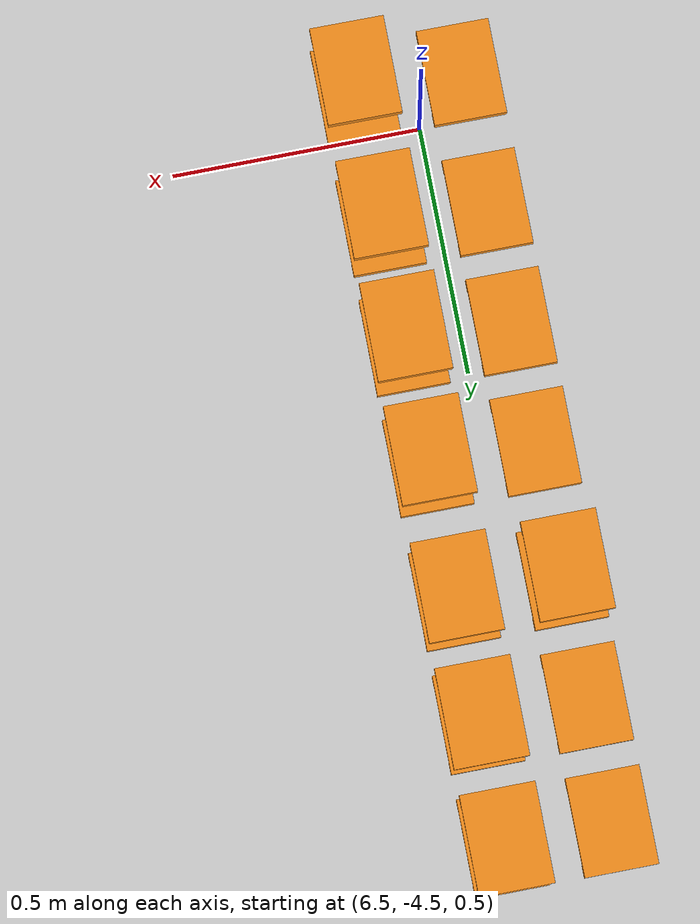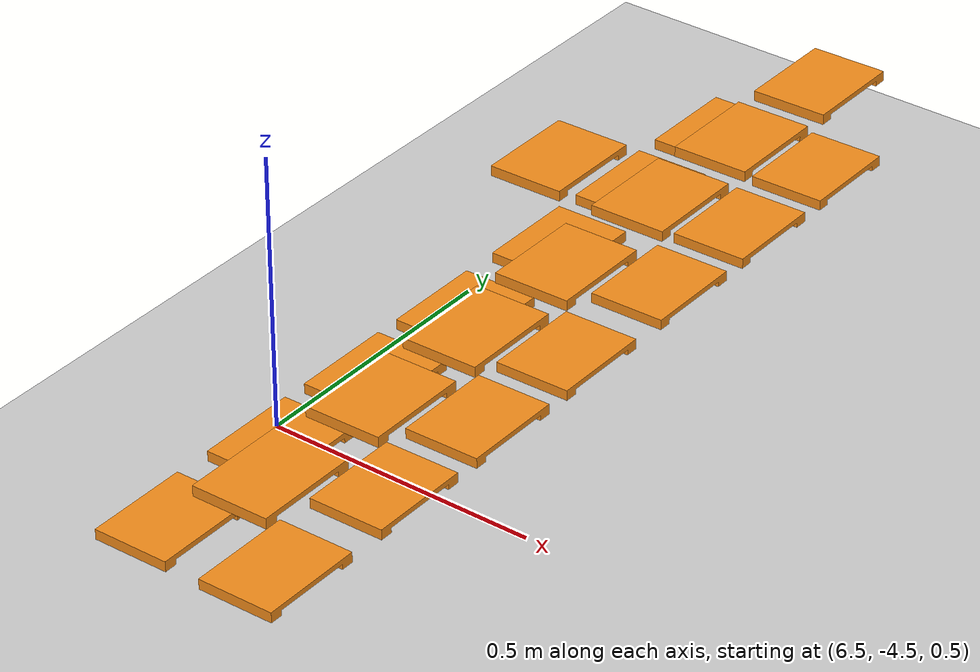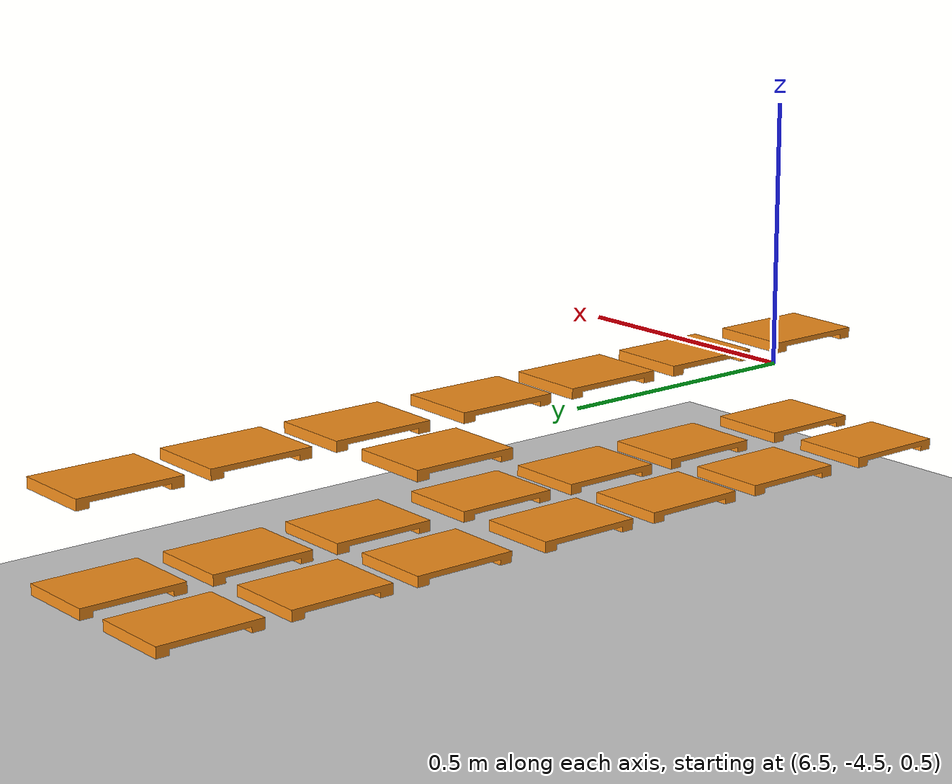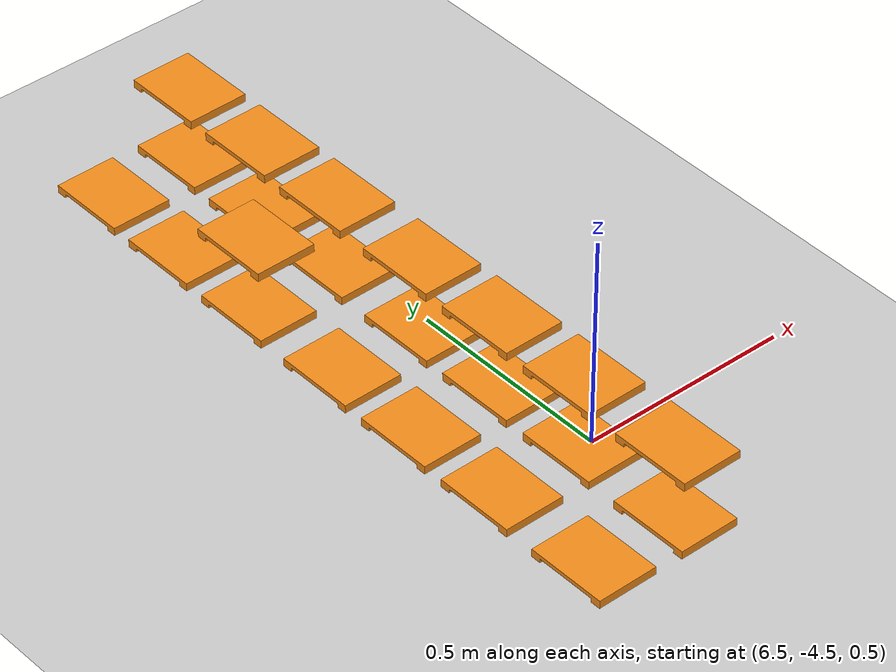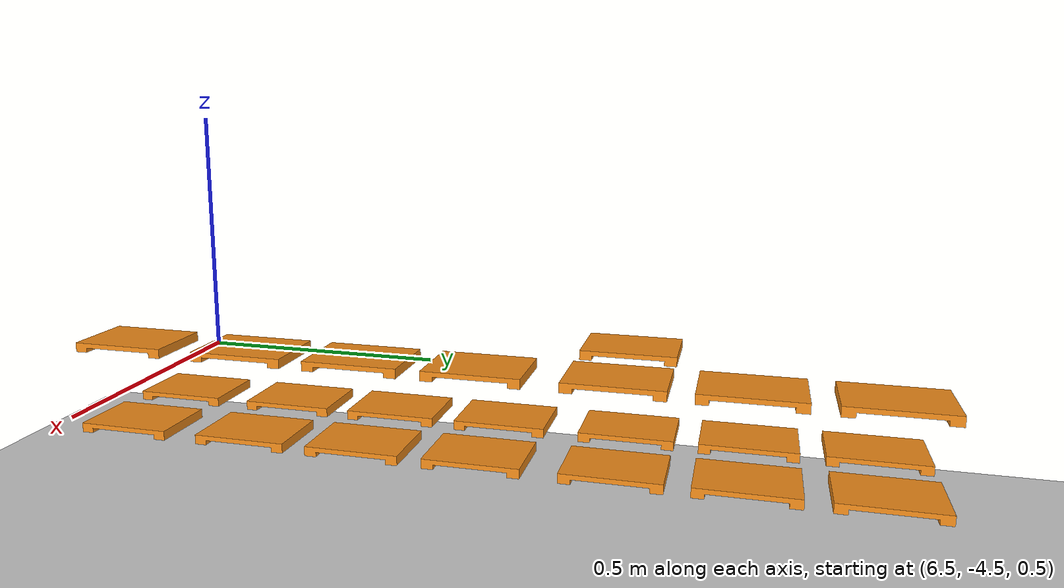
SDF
<sdf version="1.7">
 <world name="default">
  <model name="ground_plane">
   <static>1</static>
   <link name="link">
    <collision name="collision">
     <geometry><plane><normal>0 0 1</normal><size>100 100</size></plane></geometry>
     <surface>
      <contact><collide_bitmask>65535</collide_bitmask></contact>
      <friction><ode><mu>1</mu><mu2>1</mu2></ode></friction>
     </surface>
    </collision>
    <visual name="visual">
     <cast_shadows>0</cast_shadows>
     <geometry><plane><normal>0 0 1</normal><size>100 100</size></plane></geometry>
     <material>
      <script><uri>file://media/materials/scripts/gazebo.material</uri><name>Gazebo/Grey</name></script>
     </material>
    </visual>
   </link>
  </model>
  <model name="pallet_313">
   <pose>6.60557 -3.088 0.330979 3e-06 -0.013272 -3e-06</pose>
   <link name="link">
    <inertial>
     <pose>0 0 0 0 -0 1.571</pose>
     <inertia>
      <ixx>0.00220983</ixx>
      <ixy>0</ixy>
      <ixz>0</ixz>
      <iyy>0.00128087</iyy>
      <iyz>0</iyz>
      <izz>0.00244903</izz>
     </inertia>
     <mass>0.01</mass>
    </inertial>
    <visual name="visual1">
     <cast_shadows>0</cast_shadows>
     <geometry><mesh><uri>model://pallet/meshes/pallet.stl</uri></mesh></geometry>
     <material>
      <script><uri>file://media/materials/scripts/gazebo.material</uri><name>Gazebo/Orange</name></script>
      <shader type="pixel"><normal_map>__default__</normal_map></shader>
      <emissive>0 0 0 1</emissive>
     </material>
     <pose>0 0 -0 0 -0 1.571</pose>
    </visual>
    <collision name="collision_0">
     <pose>0 0 0 0 -0 1.571</pose>
     <geometry><mesh><uri>model://pallet/meshes/pallet.stl</uri></mesh></geometry>
     <surface>
      <friction>
       <ode><mu>1</mu><mu2>1</mu2><fdir1>0 0 0</fdir1><slip1>0</slip1><slip2>0</slip2></ode>
       <torsional>
        <coefficient>1</coefficient>
        <patch_radius>0</patch_radius>
        <surface_radius>0</surface_radius>
        <use_patch_radius>1</use_patch_radius>
        <ode><slip>0</slip></ode>
       </torsional>
      </friction>
      <bounce><restitution_coefficient>0</restitution_coefficient><threshold>1e+06</threshold></bounce>
      <contact>
       <collide_without_contact>0</collide_without_contact>
       <collide_without_contact_bitmask>1</collide_without_contact_bitmask>
       <collide_bitmask>1</collide_bitmask>
       <ode>
        <soft_cfm>0</soft_cfm>
        <soft_erp>0.2</soft_erp>
        <kp>1e+13</kp>
        <kd>1</kd>
        <max_vel>0.01</max_vel>
        <min_depth>0</min_depth>
       </ode>
       <bullet>
        <split_impulse>1</split_impulse>
        <split_impulse_penetration_threshold>-0.01</split_impulse_penetration_threshold>
        <soft_cfm>0</soft_cfm>
        <soft_erp>0.2</soft_erp>
        <kp>1e+13</kp>
        <kd>1</kd>
       </bullet>
      </contact>
     </surface>
    </collision>
   </link>
   <static>0</static>
  </model>
  <model name="pallet_314">
   <pose>6.60558 -3.338 0.330975 4.3e-05 -0.013267 3e-06</pose>
   <link name="link">
    <inertial>
     <pose>0 0 0 0 -0 1.571</pose>
     <inertia>
      <ixx>0.00220983</ixx>
      <ixy>0</ixy>
      <ixz>0</ixz>
      <iyy>0.00128087</iyy>
      <iyz>0</iyz>
      <izz>0.00244903</izz>
     </inertia>
     <mass>0.01</mass>
    </inertial>
    <visual name="visual1">
     <cast_shadows>0</cast_shadows>
     <geometry><mesh><uri>model://pallet/meshes/pallet.stl</uri></mesh></geometry>
     <material>
      <script><uri>file://media/materials/scripts/gazebo.material</uri><name>Gazebo/Orange</name></script>
      <shader type="pixel"><normal_map>__default__</normal_map></shader>
      <emissive>0 0 0 1</emissive>
     </material>
     <pose>0 0 -0 0 -0 1.571</pose>
    </visual>
    <collision name="collision_0">
     <pose>0 0 0 0 -0 1.571</pose>
     <geometry><mesh><uri>model://pallet/meshes/pallet.stl</uri></mesh></geometry>
     <surface>
      <friction>
       <ode><mu>1</mu><mu2>1</mu2><fdir1>0 0 0</fdir1><slip1>0</slip1><slip2>0</slip2></ode>
       <torsional>
        <coefficient>1</coefficient>
        <patch_radius>0</patch_radius>
        <surface_radius>0</surface_radius>
        <use_patch_radius>1</use_patch_radius>
        <ode><slip>0</slip></ode>
       </torsional>
      </friction>
      <bounce><restitution_coefficient>0</restitution_coefficient><threshold>1e+06</threshold></bounce>
      <contact>
       <collide_without_contact>0</collide_without_contact>
       <collide_without_contact_bitmask>1</collide_without_contact_bitmask>
       <collide_bitmask>1</collide_bitmask>
       <ode>
        <soft_cfm>0</soft_cfm>
        <soft_erp>0.2</soft_erp>
        <kp>1e+13</kp>
        <kd>1</kd>
        <max_vel>0.01</max_vel>
        <min_depth>0</min_depth>
       </ode>
       <bullet>
        <split_impulse>1</split_impulse>
        <split_impulse_penetration_threshold>-0.01</split_impulse_penetration_threshold>
        <soft_cfm>0</soft_cfm>
        <soft_erp>0.2</soft_erp>
        <kp>1e+13</kp>
        <kd>1</kd>
       </bullet>
      </contact>
     </surface>
    </collision>
   </link>
   <static>0</static>
  </model>
  <model name="pallet_315">
   <pose>6.60558 -3.588 0.330975 4e-05 -0.013264 1.2e-05</pose>
   <link name="link">
    <inertial>
     <pose>0 0 0 0 -0 1.571</pose>
     <inertia>
      <ixx>0.00220983</ixx>
      <ixy>0</ixy>
      <ixz>0</ixz>
      <iyy>0.00128087</iyy>
      <iyz>0</iyz>
      <izz>0.00244903</izz>
     </inertia>
     <mass>0.01</mass>
    </inertial>
    <visual name="visual1">
     <cast_shadows>0</cast_shadows>
     <geometry><mesh><uri>model://pallet/meshes/pallet.stl</uri></mesh></geometry>
     <material>
      <script><uri>file://media/materials/scripts/gazebo.material</uri><name>Gazebo/Orange</name></script>
      <shader type="pixel"><normal_map>__default__</normal_map></shader>
      <emissive>0 0 0 1</emissive>
     </material>
     <pose>0 0 -0 0 -0 1.571</pose>
    </visual>
    <collision name="collision_0">
     <pose>0 0 0 0 -0 1.571</pose>
     <geometry><mesh><uri>model://pallet/meshes/pallet.stl</uri></mesh></geometry>
     <surface>
      <friction>
       <ode><mu>1</mu><mu2>1</mu2><fdir1>0 0 0</fdir1><slip1>0</slip1><slip2>0</slip2></ode>
       <torsional>
        <coefficient>1</coefficient>
        <patch_radius>0</patch_radius>
        <surface_radius>0</surface_radius>
        <use_patch_radius>1</use_patch_radius>
        <ode><slip>0</slip></ode>
       </torsional>
      </friction>
      <bounce><restitution_coefficient>0</restitution_coefficient><threshold>1e+06</threshold></bounce>
      <contact>
       <collide_without_contact>0</collide_without_contact>
       <collide_without_contact_bitmask>1</collide_without_contact_bitmask>
       <collide_bitmask>1</collide_bitmask>
       <ode>
        <soft_cfm>0</soft_cfm>
        <soft_erp>0.2</soft_erp>
        <kp>1e+13</kp>
        <kd>1</kd>
        <max_vel>0.01</max_vel>
        <min_depth>0</min_depth>
       </ode>
       <bullet>
        <split_impulse>1</split_impulse>
        <split_impulse_penetration_threshold>-0.01</split_impulse_penetration_threshold>
        <soft_cfm>0</soft_cfm>
        <soft_erp>0.2</soft_erp>
        <kp>1e+13</kp>
        <kd>1</kd>
       </bullet>
      </contact>
     </surface>
    </collision>
   </link>
   <static>0</static>
  </model>
  <model name="pallet_316">
   <pose>6.60558 -3.8625 0.330977 1e-06 -0.013274 8e-06</pose>
   <link name="link">
    <inertial>
     <pose>0 0 0 0 -0 1.571</pose>
     <inertia>
      <ixx>0.00220983</ixx>
      <ixy>0</ixy>
      <ixz>0</ixz>
      <iyy>0.00128087</iyy>
      <iyz>0</iyz>
      <izz>0.00244903</izz>
     </inertia>
     <mass>0.01</mass>
    </inertial>
    <visual name="visual1">
     <cast_shadows>0</cast_shadows>
     <geometry><mesh><uri>model://pallet/meshes/pallet.stl</uri></mesh></geometry>
     <material>
      <script><uri>file://media/materials/scripts/gazebo.material</uri><name>Gazebo/Orange</name></script>
      <shader type="pixel"><normal_map>__default__</normal_map></shader>
      <emissive>0 0 0 1</emissive>
     </material>
     <pose>0 0 -0 0 -0 1.571</pose>
    </visual>
    <collision name="collision_0">
     <pose>0 0 0 0 -0 1.571</pose>
     <geometry><mesh><uri>model://pallet/meshes/pallet.stl</uri></mesh></geometry>
     <surface>
      <friction>
       <ode><mu>1</mu><mu2>1</mu2><fdir1>0 0 0</fdir1><slip1>0</slip1><slip2>0</slip2></ode>
       <torsional>
        <coefficient>1</coefficient>
        <patch_radius>0</patch_radius>
        <surface_radius>0</surface_radius>
        <use_patch_radius>1</use_patch_radius>
        <ode><slip>0</slip></ode>
       </torsional>
      </friction>
      <bounce><restitution_coefficient>0</restitution_coefficient><threshold>1e+06</threshold></bounce>
      <contact>
       <collide_without_contact>0</collide_without_contact>
       <collide_without_contact_bitmask>1</collide_without_contact_bitmask>
       <collide_bitmask>1</collide_bitmask>
       <ode>
        <soft_cfm>0</soft_cfm>
        <soft_erp>0.2</soft_erp>
        <kp>1e+13</kp>
        <kd>1</kd>
        <max_vel>0.01</max_vel>
        <min_depth>0</min_depth>
       </ode>
       <bullet>
        <split_impulse>1</split_impulse>
        <split_impulse_penetration_threshold>-0.01</split_impulse_penetration_threshold>
        <soft_cfm>0</soft_cfm>
        <soft_erp>0.2</soft_erp>
        <kp>1e+13</kp>
        <kd>1</kd>
       </bullet>
      </contact>
     </surface>
    </collision>
   </link>
   <static>0</static>
  </model>
  <model name="pallet_317">
   <pose>6.60558 -4.1125 0.330975 1.5e-05 -0.013267 6e-06</pose>
   <link name="link">
    <inertial>
     <pose>0 0 0 0 -0 1.571</pose>
     <inertia>
      <ixx>0.00220983</ixx>
      <ixy>0</ixy>
      <ixz>0</ixz>
      <iyy>0.00128087</iyy>
      <iyz>0</iyz>
      <izz>0.00244903</izz>
     </inertia>
     <mass>0.01</mass>
    </inertial>
    <visual name="visual1">
     <cast_shadows>0</cast_shadows>
     <geometry><mesh><uri>model://pallet/meshes/pallet.stl</uri></mesh></geometry>
     <material>
      <script><uri>file://media/materials/scripts/gazebo.material</uri><name>Gazebo/Orange</name></script>
      <shader type="pixel"><normal_map>__default__</normal_map></shader>
      <emissive>0 0 0 1</emissive>
     </material>
     <pose>0 0 -0 0 -0 1.571</pose>
    </visual>
    <collision name="collision_0">
     <pose>0 0 0 0 -0 1.571</pose>
     <geometry><mesh><uri>model://pallet/meshes/pallet.stl</uri></mesh></geometry>
     <surface>
      <friction>
       <ode><mu>1</mu><mu2>1</mu2><fdir1>0 0 0</fdir1><slip1>0</slip1><slip2>0</slip2></ode>
       <torsional>
        <coefficient>1</coefficient>
        <patch_radius>0</patch_radius>
        <surface_radius>0</surface_radius>
        <use_patch_radius>1</use_patch_radius>
        <ode><slip>0</slip></ode>
       </torsional>
      </friction>
      <bounce><restitution_coefficient>0</restitution_coefficient><threshold>1e+06</threshold></bounce>
      <contact>
       <collide_without_contact>0</collide_without_contact>
       <collide_without_contact_bitmask>1</collide_without_contact_bitmask>
       <collide_bitmask>1</collide_bitmask>
       <ode>
        <soft_cfm>0</soft_cfm>
        <soft_erp>0.2</soft_erp>
        <kp>1e+13</kp>
        <kd>1</kd>
        <max_vel>0.01</max_vel>
        <min_depth>0</min_depth>
       </ode>
       <bullet>
        <split_impulse>1</split_impulse>
        <split_impulse_penetration_threshold>-0.01</split_impulse_penetration_threshold>
        <soft_cfm>0</soft_cfm>
        <soft_erp>0.2</soft_erp>
        <kp>1e+13</kp>
        <kd>1</kd>
       </bullet>
      </contact>
     </surface>
    </collision>
   </link>
   <static>0</static>
  </model>
  <model name="pallet_318">
   <pose>6.60559 -4.3625 0.330974 1.9e-05 -0.013267 9e-06</pose>
   <link name="link">
    <inertial>
     <pose>0 0 0 0 -0 1.571</pose>
     <inertia>
      <ixx>0.00220983</ixx>
      <ixy>0</ixy>
      <ixz>0</ixz>
      <iyy>0.00128087</iyy>
      <iyz>0</iyz>
      <izz>0.00244903</izz>
     </inertia>
     <mass>0.01</mass>
    </inertial>
    <visual name="visual1">
     <cast_shadows>0</cast_shadows>
     <geometry><mesh><uri>model://pallet/meshes/pallet.stl</uri></mesh></geometry>
     <material>
      <script><uri>file://media/materials/scripts/gazebo.material</uri><name>Gazebo/Orange</name></script>
      <shader type="pixel"><normal_map>__default__</normal_map></shader>
      <emissive>0 0 0 1</emissive>
     </material>
     <pose>0 0 -0 0 -0 1.571</pose>
    </visual>
    <collision name="collision_0">
     <pose>0 0 0 0 -0 1.571</pose>
     <geometry><mesh><uri>model://pallet/meshes/pallet.stl</uri></mesh></geometry>
     <surface>
      <friction>
       <ode><mu>1</mu><mu2>1</mu2><fdir1>0 0 0</fdir1><slip1>0</slip1><slip2>0</slip2></ode>
       <torsional>
        <coefficient>1</coefficient>
        <patch_radius>0</patch_radius>
        <surface_radius>0</surface_radius>
        <use_patch_radius>1</use_patch_radius>
        <ode><slip>0</slip></ode>
       </torsional>
      </friction>
      <bounce><restitution_coefficient>0</restitution_coefficient><threshold>1e+06</threshold></bounce>
      <contact>
       <collide_without_contact>0</collide_without_contact>
       <collide_without_contact_bitmask>1</collide_without_contact_bitmask>
       <collide_bitmask>1</collide_bitmask>
       <ode>
        <soft_cfm>0</soft_cfm>
        <soft_erp>0.2</soft_erp>
        <kp>1e+13</kp>
        <kd>1</kd>
        <max_vel>0.01</max_vel>
        <min_depth>0</min_depth>
       </ode>
       <bullet>
        <split_impulse>1</split_impulse>
        <split_impulse_penetration_threshold>-0.01</split_impulse_penetration_threshold>
        <soft_cfm>0</soft_cfm>
        <soft_erp>0.2</soft_erp>
        <kp>1e+13</kp>
        <kd>1</kd>
       </bullet>
      </contact>
     </surface>
    </collision>
   </link>
   <static>0</static>
  </model>
  <model name="pallet_320">
   <pose>6.60559 -4.637 0.330974 1.5e-05 -0.013267 4e-06</pose>
   <link name="link">
    <inertial>
     <pose>0 0 0 0 -0 1.571</pose>
     <inertia>
      <ixx>0.00220983</ixx>
      <ixy>0</ixy>
      <ixz>0</ixz>
      <iyy>0.00128087</iyy>
      <iyz>0</iyz>
      <izz>0.00244903</izz>
     </inertia>
     <mass>0.01</mass>
    </inertial>
    <visual name="visual1">
     <cast_shadows>0</cast_shadows>
     <geometry><mesh><uri>model://pallet/meshes/pallet.stl</uri></mesh></geometry>
     <material>
      <script><uri>file://media/materials/scripts/gazebo.material</uri><name>Gazebo/Orange</name></script>
      <shader type="pixel"><normal_map>__default__</normal_map></shader>
      <emissive>0 0 0 1</emissive>
     </material>
     <pose>0 0 -0 0 -0 1.571</pose>
    </visual>
    <collision name="collision_0">
     <pose>0 0 0 0 -0 1.571</pose>
     <geometry><mesh><uri>model://pallet/meshes/pallet.stl</uri></mesh></geometry>
     <surface>
      <friction>
       <ode><mu>1</mu><mu2>1</mu2><fdir1>0 0 0</fdir1><slip1>0</slip1><slip2>0</slip2></ode>
       <torsional>
        <coefficient>1</coefficient>
        <patch_radius>0</patch_radius>
        <surface_radius>0</surface_radius>
        <use_patch_radius>1</use_patch_radius>
        <ode><slip>0</slip></ode>
       </torsional>
      </friction>
      <bounce><restitution_coefficient>0</restitution_coefficient><threshold>1e+06</threshold></bounce>
      <contact>
       <collide_without_contact>0</collide_without_contact>
       <collide_without_contact_bitmask>1</collide_without_contact_bitmask>
       <collide_bitmask>1</collide_bitmask>
       <ode>
        <soft_cfm>0</soft_cfm>
        <soft_erp>0.2</soft_erp>
        <kp>1e+13</kp>
        <kd>1</kd>
        <max_vel>0.01</max_vel>
        <min_depth>0</min_depth>
       </ode>
       <bullet>
        <split_impulse>1</split_impulse>
        <split_impulse_penetration_threshold>-0.01</split_impulse_penetration_threshold>
        <soft_cfm>0</soft_cfm>
        <soft_erp>0.2</soft_erp>
        <kp>1e+13</kp>
        <kd>1</kd>
       </bullet>
      </contact>
     </surface>
    </collision>
   </link>
   <static>0</static>
  </model>
  <model name="pallet_325">
   <pose>6.38561 -3.088 0.330987 3e-06 -0.013169 -2e-06</pose>
   <link name="link">
    <inertial>
     <pose>0 0 0 0 -0 1.571</pose>
     <inertia>
      <ixx>0.00220983</ixx>
      <ixy>0</ixy>
      <ixz>0</ixz>
      <iyy>0.00128087</iyy>
      <iyz>0</iyz>
      <izz>0.00244903</izz>
     </inertia>
     <mass>0.01</mass>
    </inertial>
    <visual name="visual1">
     <cast_shadows>0</cast_shadows>
     <geometry><mesh><uri>model://pallet/meshes/pallet.stl</uri></mesh></geometry>
     <material>
      <script><uri>file://media/materials/scripts/gazebo.material</uri><name>Gazebo/Orange</name></script>
      <shader type="pixel"><normal_map>__default__</normal_map></shader>
      <emissive>0 0 0 1</emissive>
     </material>
     <pose>0 0 -0 0 -0 1.571</pose>
    </visual>
    <collision name="collision_0">
     <pose>0 0 0 0 -0 1.571</pose>
     <geometry><mesh><uri>model://pallet/meshes/pallet.stl</uri></mesh></geometry>
     <surface>
      <friction>
       <ode><mu>1</mu><mu2>1</mu2><fdir1>0 0 0</fdir1><slip1>0</slip1><slip2>0</slip2></ode>
       <torsional>
        <coefficient>1</coefficient>
        <patch_radius>0</patch_radius>
        <surface_radius>0</surface_radius>
        <use_patch_radius>1</use_patch_radius>
        <ode><slip>0</slip></ode>
       </torsional>
      </friction>
      <bounce><restitution_coefficient>0</restitution_coefficient><threshold>1e+06</threshold></bounce>
      <contact>
       <collide_without_contact>0</collide_without_contact>
       <collide_without_contact_bitmask>1</collide_without_contact_bitmask>
       <collide_bitmask>1</collide_bitmask>
       <ode>
        <soft_cfm>0</soft_cfm>
        <soft_erp>0.2</soft_erp>
        <kp>1e+13</kp>
        <kd>1</kd>
        <max_vel>0.01</max_vel>
        <min_depth>0</min_depth>
       </ode>
       <bullet>
        <split_impulse>1</split_impulse>
        <split_impulse_penetration_threshold>-0.01</split_impulse_penetration_threshold>
        <soft_cfm>0</soft_cfm>
        <soft_erp>0.2</soft_erp>
        <kp>1e+13</kp>
        <kd>1</kd>
       </bullet>
      </contact>
     </surface>
    </collision>
   </link>
   <static>0</static>
  </model>
  <model name="pallet_326">
   <pose>6.38561 -3.338 0.330986 4e-05 -0.013161 4e-06</pose>
   <link name="link">
    <inertial>
     <pose>0 0 0 0 -0 1.571</pose>
     <inertia>
      <ixx>0.00220983</ixx>
      <ixy>0</ixy>
      <ixz>0</ixz>
      <iyy>0.00128087</iyy>
      <iyz>0</iyz>
      <izz>0.00244903</izz>
     </inertia>
     <mass>0.01</mass>
    </inertial>
    <visual name="visual1">
     <cast_shadows>0</cast_shadows>
     <geometry><mesh><uri>model://pallet/meshes/pallet.stl</uri></mesh></geometry>
     <material>
      <script><uri>file://media/materials/scripts/gazebo.material</uri><name>Gazebo/Orange</name></script>
      <shader type="pixel"><normal_map>__default__</normal_map></shader>
      <emissive>0 0 0 1</emissive>
     </material>
     <pose>0 0 -0 0 -0 1.571</pose>
    </visual>
    <collision name="collision_0">
     <pose>0 0 0 0 -0 1.571</pose>
     <geometry><mesh><uri>model://pallet/meshes/pallet.stl</uri></mesh></geometry>
     <surface>
      <friction>
       <ode><mu>1</mu><mu2>1</mu2><fdir1>0 0 0</fdir1><slip1>0</slip1><slip2>0</slip2></ode>
       <torsional>
        <coefficient>1</coefficient>
        <patch_radius>0</patch_radius>
        <surface_radius>0</surface_radius>
        <use_patch_radius>1</use_patch_radius>
        <ode><slip>0</slip></ode>
       </torsional>
      </friction>
      <bounce><restitution_coefficient>0</restitution_coefficient><threshold>1e+06</threshold></bounce>
      <contact>
       <collide_without_contact>0</collide_without_contact>
       <collide_without_contact_bitmask>1</collide_without_contact_bitmask>
       <collide_bitmask>1</collide_bitmask>
       <ode>
        <soft_cfm>0</soft_cfm>
        <soft_erp>0.2</soft_erp>
        <kp>1e+13</kp>
        <kd>1</kd>
        <max_vel>0.01</max_vel>
        <min_depth>0</min_depth>
       </ode>
       <bullet>
        <split_impulse>1</split_impulse>
        <split_impulse_penetration_threshold>-0.01</split_impulse_penetration_threshold>
        <soft_cfm>0</soft_cfm>
        <soft_erp>0.2</soft_erp>
        <kp>1e+13</kp>
        <kd>1</kd>
       </bullet>
      </contact>
     </surface>
    </collision>
   </link>
   <static>0</static>
  </model>
  <model name="pallet_327">
   <pose>6.38562 -3.588 0.330987 1.5e-05 -0.013161 1.1e-05</pose>
   <link name="link">
    <inertial>
     <pose>0 0 0 0 -0 1.571</pose>
     <inertia>
      <ixx>0.00220983</ixx>
      <ixy>0</ixy>
      <ixz>0</ixz>
      <iyy>0.00128087</iyy>
      <iyz>0</iyz>
      <izz>0.00244903</izz>
     </inertia>
     <mass>0.01</mass>
    </inertial>
    <visual name="visual1">
     <cast_shadows>0</cast_shadows>
     <geometry><mesh><uri>model://pallet/meshes/pallet.stl</uri></mesh></geometry>
     <material>
      <script><uri>file://media/materials/scripts/gazebo.material</uri><name>Gazebo/Orange</name></script>
      <shader type="pixel"><normal_map>__default__</normal_map></shader>
      <emissive>0 0 0 1</emissive>
     </material>
     <pose>0 0 -0 0 -0 1.571</pose>
    </visual>
    <collision name="collision_0">
     <pose>0 0 0 0 -0 1.571</pose>
     <geometry><mesh><uri>model://pallet/meshes/pallet.stl</uri></mesh></geometry>
     <surface>
      <friction>
       <ode><mu>1</mu><mu2>1</mu2><fdir1>0 0 0</fdir1><slip1>0</slip1><slip2>0</slip2></ode>
       <torsional>
        <coefficient>1</coefficient>
        <patch_radius>0</patch_radius>
        <surface_radius>0</surface_radius>
        <use_patch_radius>1</use_patch_radius>
        <ode><slip>0</slip></ode>
       </torsional>
      </friction>
      <bounce><restitution_coefficient>0</restitution_coefficient><threshold>1e+06</threshold></bounce>
      <contact>
       <collide_without_contact>0</collide_without_contact>
       <collide_without_contact_bitmask>1</collide_without_contact_bitmask>
       <collide_bitmask>1</collide_bitmask>
       <ode>
        <soft_cfm>0</soft_cfm>
        <soft_erp>0.2</soft_erp>
        <kp>1e+13</kp>
        <kd>1</kd>
        <max_vel>0.01</max_vel>
        <min_depth>0</min_depth>
       </ode>
       <bullet>
        <split_impulse>1</split_impulse>
        <split_impulse_penetration_threshold>-0.01</split_impulse_penetration_threshold>
        <soft_cfm>0</soft_cfm>
        <soft_erp>0.2</soft_erp>
        <kp>1e+13</kp>
        <kd>1</kd>
       </bullet>
      </contact>
     </surface>
    </collision>
   </link>
   <static>0</static>
  </model>
  <model name="pallet_328">
   <pose>6.38562 -3.8625 0.330988 1e-06 -0.013168 7e-06</pose>
   <link name="link">
    <inertial>
     <pose>0 0 0 0 -0 1.571</pose>
     <inertia>
      <ixx>0.00220983</ixx>
      <ixy>0</ixy>
      <ixz>0</ixz>
      <iyy>0.00128087</iyy>
      <iyz>0</iyz>
      <izz>0.00244903</izz>
     </inertia>
     <mass>0.01</mass>
    </inertial>
    <visual name="visual1">
     <cast_shadows>0</cast_shadows>
     <geometry><mesh><uri>model://pallet/meshes/pallet.stl</uri></mesh></geometry>
     <material>
      <script><uri>file://media/materials/scripts/gazebo.material</uri><name>Gazebo/Orange</name></script>
      <shader type="pixel"><normal_map>__default__</normal_map></shader>
      <emissive>0 0 0 1</emissive>
     </material>
     <pose>0 0 -0 0 -0 1.571</pose>
    </visual>
    <collision name="collision_0">
     <pose>0 0 0 0 -0 1.571</pose>
     <geometry><mesh><uri>model://pallet/meshes/pallet.stl</uri></mesh></geometry>
     <surface>
      <friction>
       <ode><mu>1</mu><mu2>1</mu2><fdir1>0 0 0</fdir1><slip1>0</slip1><slip2>0</slip2></ode>
       <torsional>
        <coefficient>1</coefficient>
        <patch_radius>0</patch_radius>
        <surface_radius>0</surface_radius>
        <use_patch_radius>1</use_patch_radius>
        <ode><slip>0</slip></ode>
       </torsional>
      </friction>
      <bounce><restitution_coefficient>0</restitution_coefficient><threshold>1e+06</threshold></bounce>
      <contact>
       <collide_without_contact>0</collide_without_contact>
       <collide_without_contact_bitmask>1</collide_without_contact_bitmask>
       <collide_bitmask>1</collide_bitmask>
       <ode>
        <soft_cfm>0</soft_cfm>
        <soft_erp>0.2</soft_erp>
        <kp>1e+13</kp>
        <kd>1</kd>
        <max_vel>0.01</max_vel>
        <min_depth>0</min_depth>
       </ode>
       <bullet>
        <split_impulse>1</split_impulse>
        <split_impulse_penetration_threshold>-0.01</split_impulse_penetration_threshold>
        <soft_cfm>0</soft_cfm>
        <soft_erp>0.2</soft_erp>
        <kp>1e+13</kp>
        <kd>1</kd>
       </bullet>
      </contact>
     </surface>
    </collision>
   </link>
   <static>0</static>
  </model>
  <model name="pallet_329">
   <pose>6.38562 -4.1125 0.330985 2.5e-05 -0.013161 9e-06</pose>
   <link name="link">
    <inertial>
     <pose>0 0 0 0 -0 1.571</pose>
     <inertia>
      <ixx>0.00220983</ixx>
      <ixy>0</ixy>
      <ixz>0</ixz>
      <iyy>0.00128087</iyy>
      <iyz>0</iyz>
      <izz>0.00244903</izz>
     </inertia>
     <mass>0.01</mass>
    </inertial>
    <visual name="visual1">
     <cast_shadows>0</cast_shadows>
     <geometry><mesh><uri>model://pallet/meshes/pallet.stl</uri></mesh></geometry>
     <material>
      <script><uri>file://media/materials/scripts/gazebo.material</uri><name>Gazebo/Orange</name></script>
      <shader type="pixel"><normal_map>__default__</normal_map></shader>
      <emissive>0 0 0 1</emissive>
     </material>
     <pose>0 0 -0 0 -0 1.571</pose>
    </visual>
    <collision name="collision_0">
     <pose>0 0 0 0 -0 1.571</pose>
     <geometry><mesh><uri>model://pallet/meshes/pallet.stl</uri></mesh></geometry>
     <surface>
      <friction>
       <ode><mu>1</mu><mu2>1</mu2><fdir1>0 0 0</fdir1><slip1>0</slip1><slip2>0</slip2></ode>
       <torsional>
        <coefficient>1</coefficient>
        <patch_radius>0</patch_radius>
        <surface_radius>0</surface_radius>
        <use_patch_radius>1</use_patch_radius>
        <ode><slip>0</slip></ode>
       </torsional>
      </friction>
      <bounce><restitution_coefficient>0</restitution_coefficient><threshold>1e+06</threshold></bounce>
      <contact>
       <collide_without_contact>0</collide_without_contact>
       <collide_without_contact_bitmask>1</collide_without_contact_bitmask>
       <collide_bitmask>1</collide_bitmask>
       <ode>
        <soft_cfm>0</soft_cfm>
        <soft_erp>0.2</soft_erp>
        <kp>1e+13</kp>
        <kd>1</kd>
        <max_vel>0.01</max_vel>
        <min_depth>0</min_depth>
       </ode>
       <bullet>
        <split_impulse>1</split_impulse>
        <split_impulse_penetration_threshold>-0.01</split_impulse_penetration_threshold>
        <soft_cfm>0</soft_cfm>
        <soft_erp>0.2</soft_erp>
        <kp>1e+13</kp>
        <kd>1</kd>
       </bullet>
      </contact>
     </surface>
    </collision>
   </link>
   <static>0</static>
  </model>
  <model name="pallet_330">
   <pose>6.38562 -4.3625 0.330985 2.3e-05 -0.013161 8e-06</pose>
   <link name="link">
    <inertial>
     <pose>0 0 0 0 -0 1.571</pose>
     <inertia>
      <ixx>0.00220983</ixx>
      <ixy>0</ixy>
      <ixz>0</ixz>
      <iyy>0.00128087</iyy>
      <iyz>0</iyz>
      <izz>0.00244903</izz>
     </inertia>
     <mass>0.01</mass>
    </inertial>
    <visual name="visual1">
     <cast_shadows>0</cast_shadows>
     <geometry><mesh><uri>model://pallet/meshes/pallet.stl</uri></mesh></geometry>
     <material>
      <script><uri>file://media/materials/scripts/gazebo.material</uri><name>Gazebo/Orange</name></script>
      <shader type="pixel"><normal_map>__default__</normal_map></shader>
      <emissive>0 0 0 1</emissive>
     </material>
     <pose>0 0 -0 0 -0 1.571</pose>
    </visual>
    <collision name="collision_0">
     <pose>0 0 0 0 -0 1.571</pose>
     <geometry><mesh><uri>model://pallet/meshes/pallet.stl</uri></mesh></geometry>
     <surface>
      <friction>
       <ode><mu>1</mu><mu2>1</mu2><fdir1>0 0 0</fdir1><slip1>0</slip1><slip2>0</slip2></ode>
       <torsional>
        <coefficient>1</coefficient>
        <patch_radius>0</patch_radius>
        <surface_radius>0</surface_radius>
        <use_patch_radius>1</use_patch_radius>
        <ode><slip>0</slip></ode>
       </torsional>
      </friction>
      <bounce><restitution_coefficient>0</restitution_coefficient><threshold>1e+06</threshold></bounce>
      <contact>
       <collide_without_contact>0</collide_without_contact>
       <collide_without_contact_bitmask>1</collide_without_contact_bitmask>
       <collide_bitmask>1</collide_bitmask>
       <ode>
        <soft_cfm>0</soft_cfm>
        <soft_erp>0.2</soft_erp>
        <kp>1e+13</kp>
        <kd>1</kd>
        <max_vel>0.01</max_vel>
        <min_depth>0</min_depth>
       </ode>
       <bullet>
        <split_impulse>1</split_impulse>
        <split_impulse_penetration_threshold>-0.01</split_impulse_penetration_threshold>
        <soft_cfm>0</soft_cfm>
        <soft_erp>0.2</soft_erp>
        <kp>1e+13</kp>
        <kd>1</kd>
       </bullet>
      </contact>
     </surface>
    </collision>
   </link>
   <static>0</static>
  </model>
  <model name="pallet_332">
   <pose>6.38563 -4.637 0.330984 2.1e-05 -0.013161 4e-06</pose>
   <link name="link">
    <inertial>
     <pose>0 0 0 0 -0 1.571</pose>
     <inertia>
      <ixx>0.00220983</ixx>
      <ixy>0</ixy>
      <ixz>0</ixz>
      <iyy>0.00128087</iyy>
      <iyz>0</iyz>
      <izz>0.00244903</izz>
     </inertia>
     <mass>0.01</mass>
    </inertial>
    <visual name="visual1">
     <cast_shadows>0</cast_shadows>
     <geometry><mesh><uri>model://pallet/meshes/pallet.stl</uri></mesh></geometry>
     <material>
      <script><uri>file://media/materials/scripts/gazebo.material</uri><name>Gazebo/Orange</name></script>
      <shader type="pixel"><normal_map>__default__</normal_map></shader>
      <emissive>0 0 0 1</emissive>
     </material>
     <pose>0 0 -0 0 -0 1.571</pose>
    </visual>
    <collision name="collision_0">
     <pose>0 0 0 0 -0 1.571</pose>
     <geometry><mesh><uri>model://pallet/meshes/pallet.stl</uri></mesh></geometry>
     <surface>
      <friction>
       <ode><mu>1</mu><mu2>1</mu2><fdir1>0 0 0</fdir1><slip1>0</slip1><slip2>0</slip2></ode>
       <torsional>
        <coefficient>1</coefficient>
        <patch_radius>0</patch_radius>
        <surface_radius>0</surface_radius>
        <use_patch_radius>1</use_patch_radius>
        <ode><slip>0</slip></ode>
       </torsional>
      </friction>
      <bounce><restitution_coefficient>0</restitution_coefficient><threshold>1e+06</threshold></bounce>
      <contact>
       <collide_without_contact>0</collide_without_contact>
       <collide_without_contact_bitmask>1</collide_without_contact_bitmask>
       <collide_bitmask>1</collide_bitmask>
       <ode>
        <soft_cfm>0</soft_cfm>
        <soft_erp>0.2</soft_erp>
        <kp>1e+13</kp>
        <kd>1</kd>
        <max_vel>0.01</max_vel>
        <min_depth>0</min_depth>
       </ode>
       <bullet>
        <split_impulse>1</split_impulse>
        <split_impulse_penetration_threshold>-0.01</split_impulse_penetration_threshold>
        <soft_cfm>0</soft_cfm>
        <soft_erp>0.2</soft_erp>
        <kp>1e+13</kp>
        <kd>1</kd>
       </bullet>
      </contact>
     </surface>
    </collision>
   </link>
   <static>0</static>
  </model>
  <model name="pallet_339">
   <pose>6.38325 -3.588 0.51097 4.3e-05 -0.013161 7e-06</pose>
   <link name="link">
    <inertial>
     <pose>0 0 0 0 -0 1.571</pose>
     <inertia>
      <ixx>0.00220983</ixx>
      <ixy>0</ixy>
      <ixz>0</ixz>
      <iyy>0.00128087</iyy>
      <iyz>0</iyz>
      <izz>0.00244903</izz>
     </inertia>
     <mass>0.01</mass>
    </inertial>
    <visual name="visual1">
     <cast_shadows>0</cast_shadows>
     <geometry><mesh><uri>model://pallet/meshes/pallet.stl</uri></mesh></geometry>
     <material>
      <script><uri>file://media/materials/scripts/gazebo.material</uri><name>Gazebo/Orange</name></script>
      <shader type="pixel"><normal_map>__default__</normal_map></shader>
      <emissive>0 0 0 1</emissive>
     </material>
     <pose>0 0 -0 0 -0 1.571</pose>
    </visual>
    <collision name="collision_0">
     <pose>0 0 0 0 -0 1.571</pose>
     <geometry><mesh><uri>model://pallet/meshes/pallet.stl</uri></mesh></geometry>
     <surface>
      <friction>
       <ode><mu>1</mu><mu2>1</mu2><fdir1>0 0 0</fdir1><slip1>0</slip1><slip2>0</slip2></ode>
       <torsional>
        <coefficient>1</coefficient>
        <patch_radius>0</patch_radius>
        <surface_radius>0</surface_radius>
        <use_patch_radius>1</use_patch_radius>
        <ode><slip>0</slip></ode>
       </torsional>
      </friction>
      <bounce><restitution_coefficient>0</restitution_coefficient><threshold>1e+06</threshold></bounce>
      <contact>
       <collide_without_contact>0</collide_without_contact>
       <collide_without_contact_bitmask>1</collide_without_contact_bitmask>
       <collide_bitmask>1</collide_bitmask>
       <ode>
        <soft_cfm>0</soft_cfm>
        <soft_erp>0.2</soft_erp>
        <kp>1e+13</kp>
        <kd>1</kd>
        <max_vel>0.01</max_vel>
        <min_depth>0</min_depth>
       </ode>
       <bullet>
        <split_impulse>1</split_impulse>
        <split_impulse_penetration_threshold>-0.01</split_impulse_penetration_threshold>
        <soft_cfm>0</soft_cfm>
        <soft_erp>0.2</soft_erp>
        <kp>1e+13</kp>
        <kd>1</kd>
       </bullet>
      </contact>
     </surface>
    </collision>
   </link>
   <static>0</static>
  </model>
  <model name="pallet_349">
   <pose>6.60319 -3.088 0.510956 5e-06 -0.013268 -4e-06</pose>
   <link name="link">
    <inertial>
     <pose>0 0 0 0 -0 1.571</pose>
     <inertia>
      <ixx>0.00220983</ixx>
      <ixy>0</ixy>
      <ixz>0</ixz>
      <iyy>0.00128087</iyy>
      <iyz>0</iyz>
      <izz>0.00244903</izz>
     </inertia>
     <mass>0.01</mass>
    </inertial>
    <visual name="visual1">
     <cast_shadows>0</cast_shadows>
     <geometry><mesh><uri>model://pallet/meshes/pallet.stl</uri></mesh></geometry>
     <material>
      <script><uri>file://media/materials/scripts/gazebo.material</uri><name>Gazebo/Orange</name></script>
      <shader type="pixel"><normal_map>__default__</normal_map></shader>
      <emissive>0 0 0 1</emissive>
     </material>
     <pose>0 0 -0 0 -0 1.571</pose>
    </visual>
    <collision name="collision_0">
     <pose>0 0 0 0 -0 1.571</pose>
     <geometry><mesh><uri>model://pallet/meshes/pallet.stl</uri></mesh></geometry>
     <surface>
      <friction>
       <ode><mu>1</mu><mu2>1</mu2><fdir1>0 0 0</fdir1><slip1>0</slip1><slip2>0</slip2></ode>
       <torsional>
        <coefficient>1</coefficient>
        <patch_radius>0</patch_radius>
        <surface_radius>0</surface_radius>
        <use_patch_radius>1</use_patch_radius>
        <ode><slip>0</slip></ode>
       </torsional>
      </friction>
      <bounce><restitution_coefficient>0</restitution_coefficient><threshold>1e+06</threshold></bounce>
      <contact>
       <collide_without_contact>0</collide_without_contact>
       <collide_without_contact_bitmask>1</collide_without_contact_bitmask>
       <collide_bitmask>1</collide_bitmask>
       <ode>
        <soft_cfm>0</soft_cfm>
        <soft_erp>0.2</soft_erp>
        <kp>1e+13</kp>
        <kd>1</kd>
        <max_vel>0.01</max_vel>
        <min_depth>0</min_depth>
       </ode>
       <bullet>
        <split_impulse>1</split_impulse>
        <split_impulse_penetration_threshold>-0.01</split_impulse_penetration_threshold>
        <soft_cfm>0</soft_cfm>
        <soft_erp>0.2</soft_erp>
        <kp>1e+13</kp>
        <kd>1</kd>
       </bullet>
      </contact>
     </surface>
    </collision>
   </link>
   <static>0</static>
  </model>
  <model name="pallet_350">
   <pose>6.60319 -3.338 0.510959 4.2e-05 -0.013267 4e-06</pose>
   <link name="link">
    <inertial>
     <pose>0 0 0 0 -0 1.571</pose>
     <inertia>
      <ixx>0.00220983</ixx>
      <ixy>0</ixy>
      <ixz>0</ixz>
      <iyy>0.00128087</iyy>
      <iyz>0</iyz>
      <izz>0.00244903</izz>
     </inertia>
     <mass>0.01</mass>
    </inertial>
    <visual name="visual1">
     <cast_shadows>0</cast_shadows>
     <geometry><mesh><uri>model://pallet/meshes/pallet.stl</uri></mesh></geometry>
     <material>
      <script><uri>file://media/materials/scripts/gazebo.material</uri><name>Gazebo/Orange</name></script>
      <shader type="pixel"><normal_map>__default__</normal_map></shader>
      <emissive>0 0 0 1</emissive>
     </material>
     <pose>0 0 -0 0 -0 1.571</pose>
    </visual>
    <collision name="collision_0">
     <pose>0 0 0 0 -0 1.571</pose>
     <geometry><mesh><uri>model://pallet/meshes/pallet.stl</uri></mesh></geometry>
     <surface>
      <friction>
       <ode><mu>1</mu><mu2>1</mu2><fdir1>0 0 0</fdir1><slip1>0</slip1><slip2>0</slip2></ode>
       <torsional>
        <coefficient>1</coefficient>
        <patch_radius>0</patch_radius>
        <surface_radius>0</surface_radius>
        <use_patch_radius>1</use_patch_radius>
        <ode><slip>0</slip></ode>
       </torsional>
      </friction>
      <bounce><restitution_coefficient>0</restitution_coefficient><threshold>1e+06</threshold></bounce>
      <contact>
       <collide_without_contact>0</collide_without_contact>
       <collide_without_contact_bitmask>1</collide_without_contact_bitmask>
       <collide_bitmask>1</collide_bitmask>
       <ode>
        <soft_cfm>0</soft_cfm>
        <soft_erp>0.2</soft_erp>
        <kp>1e+13</kp>
        <kd>1</kd>
        <max_vel>0.01</max_vel>
        <min_depth>0</min_depth>
       </ode>
       <bullet>
        <split_impulse>1</split_impulse>
        <split_impulse_penetration_threshold>-0.01</split_impulse_penetration_threshold>
        <soft_cfm>0</soft_cfm>
        <soft_erp>0.2</soft_erp>
        <kp>1e+13</kp>
        <kd>1</kd>
       </bullet>
      </contact>
     </surface>
    </collision>
   </link>
   <static>0</static>
  </model>
  <model name="pallet_351">
   <pose>6.60319 -3.588 0.510959 4.1e-05 -0.013264 9e-06</pose>
   <link name="link">
    <inertial>
     <pose>0 0 0 0 -0 1.571</pose>
     <inertia>
      <ixx>0.00220983</ixx>
      <ixy>0</ixy>
      <ixz>0</ixz>
      <iyy>0.00128087</iyy>
      <iyz>0</iyz>
      <izz>0.00244903</izz>
     </inertia>
     <mass>0.01</mass>
    </inertial>
    <visual name="visual1">
     <cast_shadows>0</cast_shadows>
     <geometry><mesh><uri>model://pallet/meshes/pallet.stl</uri></mesh></geometry>
     <material>
      <script><uri>file://media/materials/scripts/gazebo.material</uri><name>Gazebo/Orange</name></script>
      <shader type="pixel"><normal_map>__default__</normal_map></shader>
      <emissive>0 0 0 1</emissive>
     </material>
     <pose>0 0 -0 0 -0 1.571</pose>
    </visual>
    <collision name="collision_0">
     <pose>0 0 0 0 -0 1.571</pose>
     <geometry><mesh><uri>model://pallet/meshes/pallet.stl</uri></mesh></geometry>
     <surface>
      <friction>
       <ode><mu>1</mu><mu2>1</mu2><fdir1>0 0 0</fdir1><slip1>0</slip1><slip2>0</slip2></ode>
       <torsional>
        <coefficient>1</coefficient>
        <patch_radius>0</patch_radius>
        <surface_radius>0</surface_radius>
        <use_patch_radius>1</use_patch_radius>
        <ode><slip>0</slip></ode>
       </torsional>
      </friction>
      <bounce><restitution_coefficient>0</restitution_coefficient><threshold>1e+06</threshold></bounce>
      <contact>
       <collide_without_contact>0</collide_without_contact>
       <collide_without_contact_bitmask>1</collide_without_contact_bitmask>
       <collide_bitmask>1</collide_bitmask>
       <ode>
        <soft_cfm>0</soft_cfm>
        <soft_erp>0.2</soft_erp>
        <kp>1e+13</kp>
        <kd>1</kd>
        <max_vel>0.01</max_vel>
        <min_depth>0</min_depth>
       </ode>
       <bullet>
        <split_impulse>1</split_impulse>
        <split_impulse_penetration_threshold>-0.01</split_impulse_penetration_threshold>
        <soft_cfm>0</soft_cfm>
        <soft_erp>0.2</soft_erp>
        <kp>1e+13</kp>
        <kd>1</kd>
       </bullet>
      </contact>
     </surface>
    </collision>
   </link>
   <static>0</static>
  </model>
  <model name="pallet_352">
   <pose>6.60319 -3.8625 0.51096 8e-06 -0.013267 7e-06</pose>
   <link name="link">
    <inertial>
     <pose>0 0 0 0 -0 1.571</pose>
     <inertia>
      <ixx>0.00220983</ixx>
      <ixy>0</ixy>
      <ixz>0</ixz>
      <iyy>0.00128087</iyy>
      <iyz>0</iyz>
      <izz>0.00244903</izz>
     </inertia>
     <mass>0.01</mass>
    </inertial>
    <visual name="visual1">
     <cast_shadows>0</cast_shadows>
     <geometry><mesh><uri>model://pallet/meshes/pallet.stl</uri></mesh></geometry>
     <material>
      <script><uri>file://media/materials/scripts/gazebo.material</uri><name>Gazebo/Orange</name></script>
      <shader type="pixel"><normal_map>__default__</normal_map></shader>
      <emissive>0 0 0 1</emissive>
     </material>
     <pose>0 0 -0 0 -0 1.571</pose>
    </visual>
    <collision name="collision_0">
     <pose>0 0 0 0 -0 1.571</pose>
     <geometry><mesh><uri>model://pallet/meshes/pallet.stl</uri></mesh></geometry>
     <surface>
      <friction>
       <ode><mu>1</mu><mu2>1</mu2><fdir1>0 0 0</fdir1><slip1>0</slip1><slip2>0</slip2></ode>
       <torsional>
        <coefficient>1</coefficient>
        <patch_radius>0</patch_radius>
        <surface_radius>0</surface_radius>
        <use_patch_radius>1</use_patch_radius>
        <ode><slip>0</slip></ode>
       </torsional>
      </friction>
      <bounce><restitution_coefficient>0</restitution_coefficient><threshold>1e+06</threshold></bounce>
      <contact>
       <collide_without_contact>0</collide_without_contact>
       <collide_without_contact_bitmask>1</collide_without_contact_bitmask>
       <collide_bitmask>1</collide_bitmask>
       <ode>
        <soft_cfm>0</soft_cfm>
        <soft_erp>0.2</soft_erp>
        <kp>1e+13</kp>
        <kd>1</kd>
        <max_vel>0.01</max_vel>
        <min_depth>0</min_depth>
       </ode>
       <bullet>
        <split_impulse>1</split_impulse>
        <split_impulse_penetration_threshold>-0.01</split_impulse_penetration_threshold>
        <soft_cfm>0</soft_cfm>
        <soft_erp>0.2</soft_erp>
        <kp>1e+13</kp>
        <kd>1</kd>
       </bullet>
      </contact>
     </surface>
    </collision>
   </link>
   <static>0</static>
  </model>
  <model name="pallet_353">
   <pose>6.60319 -4.1125 0.510959 2.1e-05 -0.013269 6e-06</pose>
   <link name="link">
    <inertial>
     <pose>0 0 0 0 -0 1.571</pose>
     <inertia>
      <ixx>0.00220983</ixx>
      <ixy>0</ixy>
      <ixz>0</ixz>
      <iyy>0.00128087</iyy>
      <iyz>0</iyz>
      <izz>0.00244903</izz>
     </inertia>
     <mass>0.01</mass>
    </inertial>
    <visual name="visual1">
     <cast_shadows>0</cast_shadows>
     <geometry><mesh><uri>model://pallet/meshes/pallet.stl</uri></mesh></geometry>
     <material>
      <script><uri>file://media/materials/scripts/gazebo.material</uri><name>Gazebo/Orange</name></script>
      <shader type="pixel"><normal_map>__default__</normal_map></shader>
      <emissive>0 0 0 1</emissive>
     </material>
     <pose>0 0 -0 0 -0 1.571</pose>
    </visual>
    <collision name="collision_0">
     <pose>0 0 0 0 -0 1.571</pose>
     <geometry><mesh><uri>model://pallet/meshes/pallet.stl</uri></mesh></geometry>
     <surface>
      <friction>
       <ode><mu>1</mu><mu2>1</mu2><fdir1>0 0 0</fdir1><slip1>0</slip1><slip2>0</slip2></ode>
       <torsional>
        <coefficient>1</coefficient>
        <patch_radius>0</patch_radius>
        <surface_radius>0</surface_radius>
        <use_patch_radius>1</use_patch_radius>
        <ode><slip>0</slip></ode>
       </torsional>
      </friction>
      <bounce><restitution_coefficient>0</restitution_coefficient><threshold>1e+06</threshold></bounce>
      <contact>
       <collide_without_contact>0</collide_without_contact>
       <collide_without_contact_bitmask>1</collide_without_contact_bitmask>
       <collide_bitmask>1</collide_bitmask>
       <ode>
        <soft_cfm>0</soft_cfm>
        <soft_erp>0.2</soft_erp>
        <kp>1e+13</kp>
        <kd>1</kd>
        <max_vel>0.01</max_vel>
        <min_depth>0</min_depth>
       </ode>
       <bullet>
        <split_impulse>1</split_impulse>
        <split_impulse_penetration_threshold>-0.01</split_impulse_penetration_threshold>
        <soft_cfm>0</soft_cfm>
        <soft_erp>0.2</soft_erp>
        <kp>1e+13</kp>
        <kd>1</kd>
       </bullet>
      </contact>
     </surface>
    </collision>
   </link>
   <static>0</static>
  </model>
  <model name="pallet_354">
   <pose>6.6032 -4.3625 0.510958 3.1e-05 -0.013267 9e-06</pose>
   <link name="link">
    <inertial>
     <pose>0 0 0 0 -0 1.571</pose>
     <inertia>
      <ixx>0.00220983</ixx>
      <ixy>0</ixy>
      <ixz>0</ixz>
      <iyy>0.00128087</iyy>
      <iyz>0</iyz>
      <izz>0.00244903</izz>
     </inertia>
     <mass>0.01</mass>
    </inertial>
    <visual name="visual1">
     <cast_shadows>0</cast_shadows>
     <geometry><mesh><uri>model://pallet/meshes/pallet.stl</uri></mesh></geometry>
     <material>
      <script><uri>file://media/materials/scripts/gazebo.material</uri><name>Gazebo/Orange</name></script>
      <shader type="pixel"><normal_map>__default__</normal_map></shader>
      <emissive>0 0 0 1</emissive>
     </material>
     <pose>0 0 -0 0 -0 1.571</pose>
    </visual>
    <collision name="collision_0">
     <pose>0 0 0 0 -0 1.571</pose>
     <geometry><mesh><uri>model://pallet/meshes/pallet.stl</uri></mesh></geometry>
     <surface>
      <friction>
       <ode><mu>1</mu><mu2>1</mu2><fdir1>0 0 0</fdir1><slip1>0</slip1><slip2>0</slip2></ode>
       <torsional>
        <coefficient>1</coefficient>
        <patch_radius>0</patch_radius>
        <surface_radius>0</surface_radius>
        <use_patch_radius>1</use_patch_radius>
        <ode><slip>0</slip></ode>
       </torsional>
      </friction>
      <bounce><restitution_coefficient>0</restitution_coefficient><threshold>1e+06</threshold></bounce>
      <contact>
       <collide_without_contact>0</collide_without_contact>
       <collide_without_contact_bitmask>1</collide_without_contact_bitmask>
       <collide_bitmask>1</collide_bitmask>
       <ode>
        <soft_cfm>0</soft_cfm>
        <soft_erp>0.2</soft_erp>
        <kp>1e+13</kp>
        <kd>1</kd>
        <max_vel>0.01</max_vel>
        <min_depth>0</min_depth>
       </ode>
       <bullet>
        <split_impulse>1</split_impulse>
        <split_impulse_penetration_threshold>-0.01</split_impulse_penetration_threshold>
        <soft_cfm>0</soft_cfm>
        <soft_erp>0.2</soft_erp>
        <kp>1e+13</kp>
        <kd>1</kd>
       </bullet>
      </contact>
     </surface>
    </collision>
   </link>
   <static>0</static>
  </model>
  <model name="pallet_356">
   <pose>6.6032 -4.637 0.510958 1.8e-05 -0.013266 6e-06</pose>
   <link name="link">
    <inertial>
     <pose>0 0 0 0 -0 1.571</pose>
     <inertia>
      <ixx>0.00220983</ixx>
      <ixy>0</ixy>
      <ixz>0</ixz>
      <iyy>0.00128087</iyy>
      <iyz>0</iyz>
      <izz>0.00244903</izz>
     </inertia>
     <mass>0.01</mass>
    </inertial>
    <visual name="visual1">
     <cast_shadows>0</cast_shadows>
     <geometry><mesh><uri>model://pallet/meshes/pallet.stl</uri></mesh></geometry>
     <material>
      <script><uri>file://media/materials/scripts/gazebo.material</uri><name>Gazebo/Orange</name></script>
      <shader type="pixel"><normal_map>__default__</normal_map></shader>
      <emissive>0 0 0 1</emissive>
     </material>
     <pose>0 0 -0 0 -0 1.571</pose>
    </visual>
    <collision name="collision_0">
     <pose>0 0 0 0 -0 1.571</pose>
     <geometry><mesh><uri>model://pallet/meshes/pallet.stl</uri></mesh></geometry>
     <surface>
      <friction>
       <ode><mu>1</mu><mu2>1</mu2><fdir1>0 0 0</fdir1><slip1>0</slip1><slip2>0</slip2></ode>
       <torsional>
        <coefficient>1</coefficient>
        <patch_radius>0</patch_radius>
        <surface_radius>0</surface_radius>
        <use_patch_radius>1</use_patch_radius>
        <ode><slip>0</slip></ode>
       </torsional>
      </friction>
      <bounce><restitution_coefficient>0</restitution_coefficient><threshold>1e+06</threshold></bounce>
      <contact>
       <collide_without_contact>0</collide_without_contact>
       <collide_without_contact_bitmask>1</collide_without_contact_bitmask>
       <collide_bitmask>1</collide_bitmask>
       <ode>
        <soft_cfm>0</soft_cfm>
        <soft_erp>0.2</soft_erp>
        <kp>1e+13</kp>
        <kd>1</kd>
        <max_vel>0.01</max_vel>
        <min_depth>0</min_depth>
       </ode>
       <bullet>
        <split_impulse>1</split_impulse>
        <split_impulse_penetration_threshold>-0.01</split_impulse_penetration_threshold>
        <soft_cfm>0</soft_cfm>
        <soft_erp>0.2</soft_erp>
        <kp>1e+13</kp>
        <kd>1</kd>
       </bullet>
      </contact>
     </surface>
    </collision>
   </link>
   <static>0</static>
  </model>
 </world>
</sdf>
